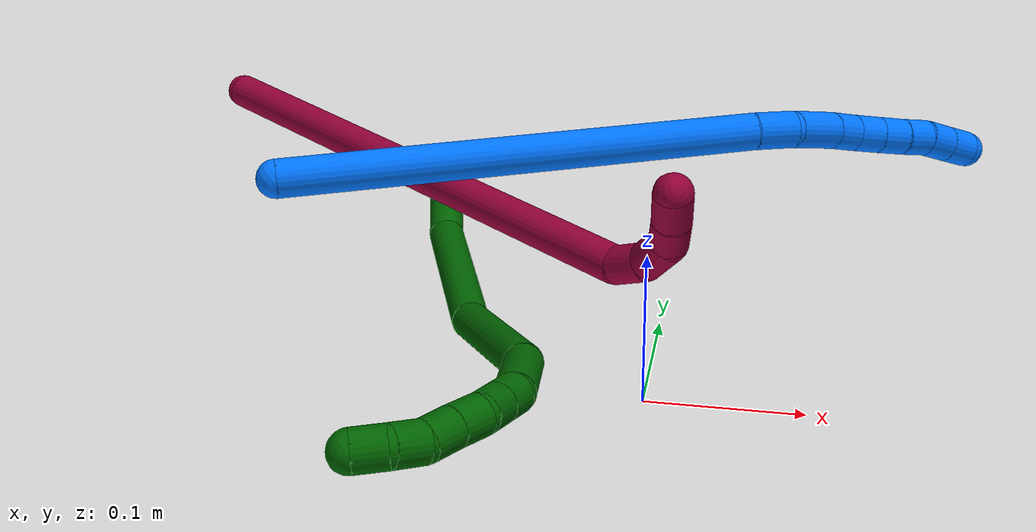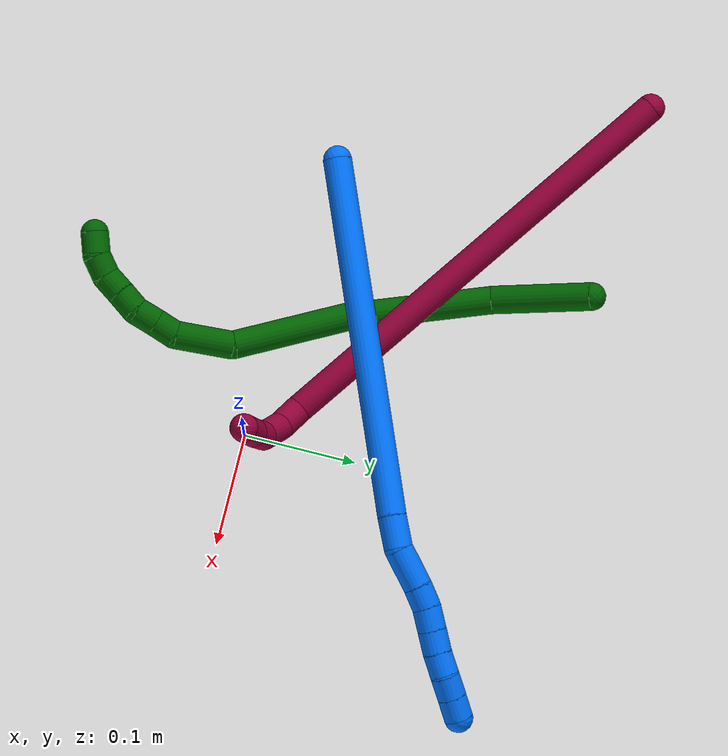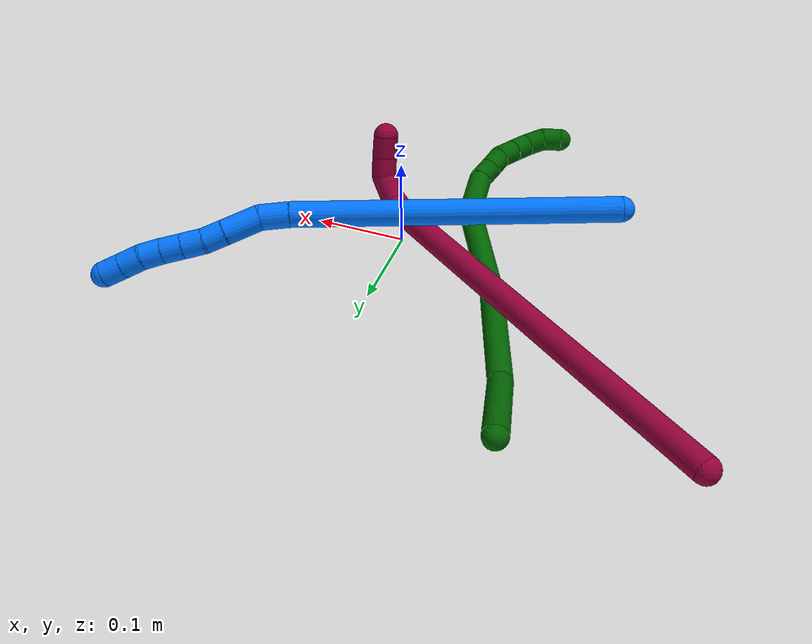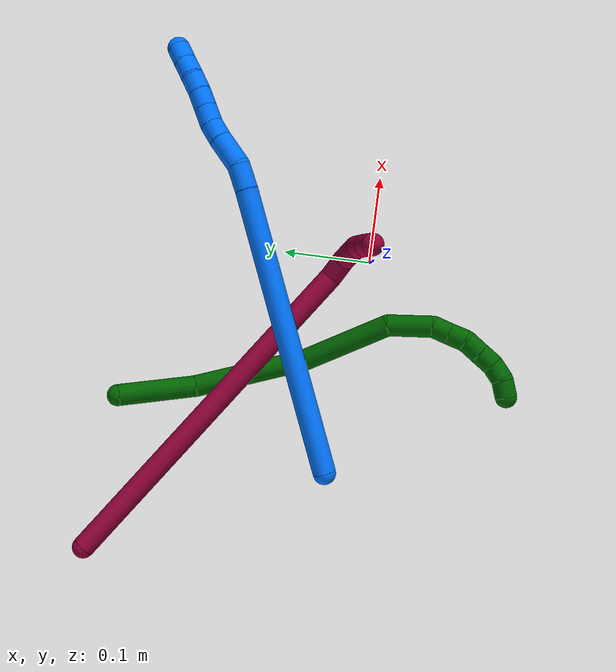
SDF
<sdf version="1.7">
 <world name="default">
  <model name="photoneo_s_sensor">
   <static>1</static>
   <pose>0 0 2 1.57079 1.57079 3.14159</pose>
   <link name="link">
    <inertial><mass>0.1</mass></inertial>
    <sensor name="sensor" type="depth">
     <update_rate>30</update_rate>
     <camera>
      <horizontal_fov>1.22</horizontal_fov>
      <image><width>1920</width><height>1200</height><format>B8G8R8</format></image>
      <clip><near>0.1</near><far>4</far></clip>
      <depth_camera><output>points</output></depth_camera>
     </camera>
     <plugin name="camera_plugin" filename="libgazebo_ros_depth_camera.so">
      <baseline>0.2</baseline>
      <alwaysOn>1</alwaysOn>
      <updateRate>0.0</updateRate>
      <cameraName>camera_ir</cameraName>
      <imageTopicName>/camera/color/image_raw</imageTopicName>
      <cameraInfoTopicName>/camera/color/camera_info</cameraInfoTopicName>
      <depthImageTopicName>/camera/depth/image_raw</depthImageTopicName>
      <depthImageCameraInfoTopicName>/camera/depth/camera_info</depthImageCameraInfoTopicName>
      <pointCloudTopicName>/camera/depth/points</pointCloudTopicName>
      <frameName>fr_optical</frameName>
      <pointCloudCutoff>0.1</pointCloudCutoff>
      <pointCloudCutoffMax>2.0</pointCloudCutoffMax>
      <distortionK1>0</distortionK1>
      <distortionK2>0</distortionK2>
      <distortionK3>0</distortionK3>
      <distortionT1>0</distortionT1>
      <distortionT2>0</distortionT2>
      <CxPrime>0</CxPrime>
      <Cx>0</Cx>
      <Cy>0</Cy>
      <focalLength>0</focalLength>
      <hackBaseline>0</hackBaseline>
     </plugin>
    </sensor>
   </link>
  </model>
  <model name="bin">
   <static>1</static>
   <link name="bottom">
    <collision name="collision-bottom">
     <pose>0 0 -0.01 0 -0 0</pose>
     <geometry><box><size>0.8 0.6 0.02</size></box></geometry>
     <surface>
      <friction><ode><mu>100</mu><mu2>100</mu2></ode></friction>
      <contact><collide_bitmask>65535</collide_bitmask></contact>
     </surface>
    </collision>
   </link>
   <link name="west_wall">
    <collision name="collision-west_wall">
     <pose>-0.41 0 0.1 0 -0 0</pose>
     <geometry><box><size>0.02 0.6 0.2</size></box></geometry>
     <surface>
      <friction><ode><mu>100</mu><mu2>100</mu2></ode></friction>
      <contact><collide_bitmask>65535</collide_bitmask></contact>
     </surface>
    </collision>
   </link>
   <link name="east_wall">
    <collision name="collision-east_wall">
     <pose>0.41 0 0.1 0 -0 0</pose>
     <geometry><box><size>0.02 0.6 0.2</size></box></geometry>
     <surface>
      <friction><ode><mu>100</mu><mu2>100</mu2></ode></friction>
      <contact><collide_bitmask>65535</collide_bitmask></contact>
     </surface>
    </collision>
   </link>
   <link name="south_wall">
    <collision name="collision-south_wall">
     <pose>0 -0.31 0.1 0 -0 0</pose>
     <geometry><box><size>0.8 0.02 0.2</size></box></geometry>
     <surface>
      <friction><ode><mu>100</mu><mu2>100</mu2></ode></friction>
      <contact><collide_bitmask>65535</collide_bitmask></contact>
     </surface>
    </collision>
   </link>
   <link name="north_wall">
    <collision name="collision-north_wall">
     <pose>0 0.31 0.1 0 -0 0</pose>
     <geometry><box><size>0.8 0.02 0.2</size></box></geometry>
     <surface>
      <friction><ode><mu>100</mu><mu2>100</mu2></ode></friction>
      <contact><collide_bitmask>65535</collide_bitmask></contact>
     </surface>
    </collision>
   </link>
  </model>
  <model name="6">
   <static>0</static>
   <link name="6">
    <collision name="collision-cylinder-e_1_1_4">
     <pose>0.002507 -0.037342 0.025676 0.968458 0.055254 0.029069</pose>
     <geometry><cylinder><radius>0.0125</radius><length>0.090774</length></cylinder></geometry>
     <surface>
      <friction><ode><mu>1.16</mu><mu2>1.16</mu2><slip1>0</slip1><slip2>0</slip2></ode></friction>
      <contact><ode><kp>1e+06</kp><kd>1</kd><max_vel>0</max_vel><min_depth>0.001</min_depth></ode></contact>
     </surface>
    </collision>
    <visual name="visual-cylinder-e_1_1_4">
     <pose>0.002507 -0.037342 0.025676 0.968458 0.055254 0.029069</pose>
     <geometry><cylinder><radius>0.0125</radius><length>0.090774</length></cylinder></geometry>
     <material><ambient>0 0.392157 0.003922 1</ambient></material>
    </visual>
    <collision name="collision-cylinder-e_2_4_5">
     <pose>0.026877 -0.122411 0.089234 0.899874 0.344505 0.16766</pose>
     <geometry><cylinder><radius>0.0125</radius><length>0.129476</length></cylinder></geometry>
     <surface>
      <friction><ode><mu>1.16</mu><mu2>1.16</mu2><slip1>0</slip1><slip2>0</slip2></ode></friction>
      <contact><ode><kp>1e+06</kp><kd>1</kd><max_vel>0</max_vel><min_depth>0.001</min_depth></ode></contact>
     </surface>
    </collision>
    <visual name="visual-cylinder-e_2_4_5">
     <pose>0.026877 -0.122411 0.089234 0.899874 0.344505 0.16766</pose>
     <geometry><cylinder><radius>0.0125</radius><length>0.129476</length></cylinder></geometry>
     <material><ambient>0 0.392157 0.003922 1</ambient></material>
    </visual>
    <collision name="collision-cylinder-e_3_5_6">
     <pose>0.081384 -0.202708 0.154956 0.863569 0.651043 0.308582</pose>
     <geometry><cylinder><radius>0.0125</radius><length>0.107729</length></cylinder></geometry>
     <surface>
      <friction><ode><mu>1.16</mu><mu2>1.16</mu2><slip1>0</slip1><slip2>0</slip2></ode></friction>
      <contact><ode><kp>1e+06</kp><kd>1</kd><max_vel>0</max_vel><min_depth>0.001</min_depth></ode></contact>
     </surface>
    </collision>
    <visual name="visual-cylinder-e_3_5_6">
     <pose>0.081384 -0.202708 0.154956 0.863569 0.651043 0.308582</pose>
     <geometry><cylinder><radius>0.0125</radius><length>0.107729</length></cylinder></geometry>
     <material><ambient>0 0.392157 0.003922 1</ambient></material>
    </visual>
    <collision name="collision-cylinder-e_4_6_7">
     <pose>0.122631 -0.247744 0.203933 0.532815 0.337252 0.09285</pose>
     <geometry><cylinder><radius>0.0125</radius><length>0.052008</length></cylinder></geometry>
     <surface>
      <friction><ode><mu>1.16</mu><mu2>1.16</mu2><slip1>0</slip1><slip2>0</slip2></ode></friction>
      <contact><ode><kp>1e+06</kp><kd>1</kd><max_vel>0</max_vel><min_depth>0.001</min_depth></ode></contact>
     </surface>
    </collision>
    <visual name="visual-cylinder-e_4_6_7">
     <pose>0.122631 -0.247744 0.203933 0.532815 0.337252 0.09285</pose>
     <geometry><cylinder><radius>0.0125</radius><length>0.052008</length></cylinder></geometry>
     <material><ambient>0 0.392157 0.003922 1</ambient></material>
    </visual>
    <collision name="collision-cylinder-e_5_7_8">
     <pose>0.131755 -0.262684 0.234748 0.250455 0.051938 0.00654</pose>
     <geometry><cylinder><radius>0.0125</radius><length>0.020006</length></cylinder></geometry>
     <surface>
      <friction><ode><mu>1.16</mu><mu2>1.16</mu2><slip1>0</slip1><slip2>0</slip2></ode></friction>
      <contact><ode><kp>1e+06</kp><kd>1</kd><max_vel>0</max_vel><min_depth>0.001</min_depth></ode></contact>
     </surface>
    </collision>
    <visual name="visual-cylinder-e_5_7_8">
     <pose>0.131755 -0.262684 0.234748 0.250455 0.051938 0.00654</pose>
     <geometry><cylinder><radius>0.0125</radius><length>0.020006</length></cylinder></geometry>
     <material><ambient>0 0.392157 0.003922 1</ambient></material>
    </visual>
    <collision name="collision-cylinder-e_6_8_9">
     <pose>0.133231 -0.267672 0.254058 0.255066 0.095794 0.012293</pose>
     <geometry><cylinder><radius>0.0125</radius><length>0.020002</length></cylinder></geometry>
     <surface>
      <friction><ode><mu>1.16</mu><mu2>1.16</mu2><slip1>0</slip1><slip2>0</slip2></ode></friction>
      <contact><ode><kp>1e+06</kp><kd>1</kd><max_vel>0</max_vel><min_depth>0.001</min_depth></ode></contact>
     </surface>
    </collision>
    <visual name="visual-cylinder-e_6_8_9">
     <pose>0.133231 -0.267672 0.254058 0.255066 0.095794 0.012293</pose>
     <geometry><cylinder><radius>0.0125</radius><length>0.020002</length></cylinder></geometry>
     <material><ambient>0 0.392157 0.003922 1</ambient></material>
    </visual>
    <collision name="collision-cylinder-e_7_9_10">
     <pose>0.131643 -0.271261 0.273305 0.111602 -0.257179 -0.014445</pose>
     <geometry><cylinder><radius>0.0125</radius><length>0.020005</length></cylinder></geometry>
     <surface>
      <friction><ode><mu>1.16</mu><mu2>1.16</mu2><slip1>0</slip1><slip2>0</slip2></ode></friction>
      <contact><ode><kp>1e+06</kp><kd>1</kd><max_vel>0</max_vel><min_depth>0.001</min_depth></ode></contact>
     </surface>
    </collision>
    <visual name="visual-cylinder-e_7_9_10">
     <pose>0.131643 -0.271261 0.273305 0.111602 -0.257179 -0.014445</pose>
     <geometry><cylinder><radius>0.0125</radius><length>0.020005</length></cylinder></geometry>
     <material><ambient>0 0.392157 0.003922 1</ambient></material>
    </visual>
    <collision name="collision-cylinder-e_8_10_11">
     <pose>0.126445 -0.273771 0.292453 0.149115 -0.268665 -0.020189</pose>
     <geometry><cylinder><radius>0.0125</radius><length>0.02</length></cylinder></geometry>
     <surface>
      <friction><ode><mu>1.16</mu><mu2>1.16</mu2><slip1>0</slip1><slip2>0</slip2></ode></friction>
      <contact><ode><kp>1e+06</kp><kd>1</kd><max_vel>0</max_vel><min_depth>0.001</min_depth></ode></contact>
     </surface>
    </collision>
    <visual name="visual-cylinder-e_8_10_11">
     <pose>0.126445 -0.273771 0.292453 0.149115 -0.268665 -0.020189</pose>
     <geometry><cylinder><radius>0.0125</radius><length>0.02</length></cylinder></geometry>
     <material><ambient>0 0.392157 0.003922 1</ambient></material>
    </visual>
    <collision name="collision-cylinder-e_9_11_12">
     <pose>0.120635 -0.273453 0.311314 -0.185494 -0.320976 0.030112</pose>
     <geometry><cylinder><radius>0.0125</radius><length>0.02</length></cylinder></geometry>
     <surface>
      <friction><ode><mu>1.16</mu><mu2>1.16</mu2><slip1>0</slip1><slip2>0</slip2></ode></friction>
      <contact><ode><kp>1e+06</kp><kd>1</kd><max_vel>0</max_vel><min_depth>0.001</min_depth></ode></contact>
     </surface>
    </collision>
    <visual name="visual-cylinder-e_9_11_12">
     <pose>0.120635 -0.273453 0.311314 -0.185494 -0.320976 0.030112</pose>
     <geometry><cylinder><radius>0.0125</radius><length>0.02</length></cylinder></geometry>
     <material><ambient>0 0.392157 0.003922 1</ambient></material>
    </visual>
    <collision name="collision-cylinder-e_10_12_2">
     <pose>0.111303 -0.268555 0.327848 -0.411747 -0.66577 0.144158</pose>
     <geometry><cylinder><radius>0.0125</radius><length>0.02</length></cylinder></geometry>
     <surface>
      <friction><ode><mu>1.16</mu><mu2>1.16</mu2><slip1>0</slip1><slip2>0</slip2></ode></friction>
      <contact><ode><kp>1e+06</kp><kd>1</kd><max_vel>0</max_vel><min_depth>0.001</min_depth></ode></contact>
     </surface>
    </collision>
    <visual name="visual-cylinder-e_10_12_2">
     <pose>0.111303 -0.268555 0.327848 -0.411747 -0.66577 0.144158</pose>
     <geometry><cylinder><radius>0.0125</radius><length>0.02</length></cylinder></geometry>
     <material><ambient>0 0.392157 0.003922 1</ambient></material>
    </visual>
    <collision name="collision-sphere-2">
     <pose>0.105127 -0.265408 0.335055 0 -0 0</pose>
     <geometry><sphere><radius>0.0125</radius></sphere></geometry>
     <surface>
      <friction><ode><mu>1.16</mu><mu2>1.16</mu2><slip1>0</slip1><slip2>0</slip2></ode></friction>
      <contact><ode><kp>1e+06</kp><kd>1</kd><max_vel>0</max_vel><min_depth>0.001</min_depth></ode></contact>
     </surface>
    </collision>
    <visual name="visual-sphere-2">
     <pose>0.105127 -0.265408 0.335055 0 -0 0</pose>
     <geometry><sphere><radius>0.0125</radius></sphere></geometry>
     <material><ambient>0 0.392157 0.003922 1</ambient></material>
    </visual>
    <collision name="collision-sphere-12">
     <pose>0.11748 -0.271703 0.32064 0 -0 0</pose>
     <geometry><sphere><radius>0.0125</radius></sphere></geometry>
     <surface>
      <friction><ode><mu>1.16</mu><mu2>1.16</mu2><slip1>0</slip1><slip2>0</slip2></ode></friction>
      <contact><ode><kp>1e+06</kp><kd>1</kd><max_vel>0</max_vel><min_depth>0.001</min_depth></ode></contact>
     </surface>
    </collision>
    <visual name="visual-sphere-12">
     <pose>0.11748 -0.271703 0.32064 0 -0 0</pose>
     <geometry><sphere><radius>0.0125</radius></sphere></geometry>
     <material><ambient>0 0.392157 0.003922 1</ambient></material>
    </visual>
    <collision name="collision-sphere-11">
     <pose>0.12379 -0.275203 0.301987 0 -0 0</pose>
     <geometry><sphere><radius>0.0125</radius></sphere></geometry>
     <surface>
      <friction><ode><mu>1.16</mu><mu2>1.16</mu2><slip1>0</slip1><slip2>0</slip2></ode></friction>
      <contact><ode><kp>1e+06</kp><kd>1</kd><max_vel>0</max_vel><min_depth>0.001</min_depth></ode></contact>
     </surface>
    </collision>
    <visual name="visual-sphere-11">
     <pose>0.12379 -0.275203 0.301987 0 -0 0</pose>
     <geometry><sphere><radius>0.0125</radius></sphere></geometry>
     <material><ambient>0 0.392157 0.003922 1</ambient></material>
    </visual>
    <collision name="collision-sphere-10">
     <pose>0.129099 -0.272338 0.282918 0 -0 0</pose>
     <geometry><sphere><radius>0.0125</radius></sphere></geometry>
     <surface>
      <friction><ode><mu>1.16</mu><mu2>1.16</mu2><slip1>0</slip1><slip2>0</slip2></ode></friction>
      <contact><ode><kp>1e+06</kp><kd>1</kd><max_vel>0</max_vel><min_depth>0.001</min_depth></ode></contact>
     </surface>
    </collision>
    <visual name="visual-sphere-10">
     <pose>0.129099 -0.272338 0.282918 0 -0 0</pose>
     <geometry><sphere><radius>0.0125</radius></sphere></geometry>
     <material><ambient>0 0.392157 0.003922 1</ambient></material>
    </visual>
    <collision name="collision-sphere-9">
     <pose>0.134187 -0.270183 0.263691 0 -0 0</pose>
     <geometry><sphere><radius>0.0125</radius></sphere></geometry>
     <surface>
      <friction><ode><mu>1.16</mu><mu2>1.16</mu2><slip1>0</slip1><slip2>0</slip2></ode></friction>
      <contact><ode><kp>1e+06</kp><kd>1</kd><max_vel>0</max_vel><min_depth>0.001</min_depth></ode></contact>
     </surface>
    </collision>
    <visual name="visual-sphere-9">
     <pose>0.134187 -0.270183 0.263691 0 -0 0</pose>
     <geometry><sphere><radius>0.0125</radius></sphere></geometry>
     <material><ambient>0 0.392157 0.003922 1</ambient></material>
    </visual>
    <collision name="collision-sphere-4">
     <pose>0.005013 -0.074684 0.051351 0 -0 0</pose>
     <geometry><sphere><radius>0.0125</radius></sphere></geometry>
     <surface>
      <friction><ode><mu>1.16</mu><mu2>1.16</mu2><slip1>0</slip1><slip2>0</slip2></ode></friction>
      <contact><ode><kp>1e+06</kp><kd>1</kd><max_vel>0</max_vel><min_depth>0.001</min_depth></ode></contact>
     </surface>
    </collision>
    <visual name="visual-sphere-4">
     <pose>0.005013 -0.074684 0.051351 0 -0 0</pose>
     <geometry><sphere><radius>0.0125</radius></sphere></geometry>
     <material><ambient>0 0.392157 0.003922 1</ambient></material>
    </visual>
    <collision name="collision-sphere-1">
     <geometry><sphere><radius>0.0125</radius></sphere></geometry>
     <surface>
      <friction><ode><mu>1.16</mu><mu2>1.16</mu2><slip1>0</slip1><slip2>0</slip2></ode></friction>
      <contact><ode><kp>1e+06</kp><kd>1</kd><max_vel>0</max_vel><min_depth>0.001</min_depth></ode></contact>
     </surface>
    </collision>
    <visual name="visual-sphere-1">
     <geometry><sphere><radius>0.0125</radius></sphere></geometry>
     <material><ambient>0 0.392157 0.003922 1</ambient></material>
    </visual>
    <collision name="collision-sphere-8">
     <pose>0.132274 -0.26516 0.244425 0 -0 0</pose>
     <geometry><sphere><radius>0.0125</radius></sphere></geometry>
     <surface>
      <friction><ode><mu>1.16</mu><mu2>1.16</mu2><slip1>0</slip1><slip2>0</slip2></ode></friction>
      <contact><ode><kp>1e+06</kp><kd>1</kd><max_vel>0</max_vel><min_depth>0.001</min_depth></ode></contact>
     </surface>
    </collision>
    <visual name="visual-sphere-8">
     <pose>0.132274 -0.26516 0.244425 0 -0 0</pose>
     <geometry><sphere><radius>0.0125</radius></sphere></geometry>
     <material><ambient>0 0.392157 0.003922 1</ambient></material>
    </visual>
    <collision name="collision-sphere-5">
     <pose>0.048741 -0.170138 0.127118 0 -0 0</pose>
     <geometry><sphere><radius>0.0125</radius></sphere></geometry>
     <surface>
      <friction><ode><mu>1.16</mu><mu2>1.16</mu2><slip1>0</slip1><slip2>0</slip2></ode></friction>
      <contact><ode><kp>1e+06</kp><kd>1</kd><max_vel>0</max_vel><min_depth>0.001</min_depth></ode></contact>
     </surface>
    </collision>
    <visual name="visual-sphere-5">
     <pose>0.048741 -0.170138 0.127118 0 -0 0</pose>
     <geometry><sphere><radius>0.0125</radius></sphere></geometry>
     <material><ambient>0 0.392157 0.003922 1</ambient></material>
    </visual>
    <collision name="collision-sphere-6">
     <pose>0.114027 -0.235279 0.182795 0 -0 0</pose>
     <geometry><sphere><radius>0.0125</radius></sphere></geometry>
     <surface>
      <friction><ode><mu>1.16</mu><mu2>1.16</mu2><slip1>0</slip1><slip2>0</slip2></ode></friction>
      <contact><ode><kp>1e+06</kp><kd>1</kd><max_vel>0</max_vel><min_depth>0.001</min_depth></ode></contact>
     </surface>
    </collision>
    <visual name="visual-sphere-6">
     <pose>0.114027 -0.235279 0.182795 0 -0 0</pose>
     <geometry><sphere><radius>0.0125</radius></sphere></geometry>
     <material><ambient>0 0.392157 0.003922 1</ambient></material>
    </visual>
    <collision name="collision-sphere-7">
     <pose>0.131236 -0.260208 0.22507 0 -0 0</pose>
     <geometry><sphere><radius>0.0125</radius></sphere></geometry>
     <surface>
      <friction><ode><mu>1.16</mu><mu2>1.16</mu2><slip1>0</slip1><slip2>0</slip2></ode></friction>
      <contact><ode><kp>1e+06</kp><kd>1</kd><max_vel>0</max_vel><min_depth>0.001</min_depth></ode></contact>
     </surface>
    </collision>
    <visual name="visual-sphere-7">
     <pose>0.131236 -0.260208 0.22507 0 -0 0</pose>
     <geometry><sphere><radius>0.0125</radius></sphere></geometry>
     <material><ambient>0 0.392157 0.003922 1</ambient></material>
    </visual>
    <inertial>
     <pose>0.067909 -0.172625 0.150124 0 -0 0</pose>
     <mass>0.5</mass>
     <inertia><ixx>0.000408</ixx><ixy>0</ixy><ixz>0</ixz><iyy>0.0003</iyy><iyz>0</iyz><izz>0.000155</izz></inertia>
    </inertial>
   </link>
   <pose>-0.188579 0.267674 0.041274 1.09294 -0.806228 -0.176507</pose>
  </model>
  <model name="8">
   <static>0</static>
   <link name="8">
    <collision name="collision-cylinder-e_1_1_4">
     <pose>0.155625 -0.005562 -0.130333 3.09894 0.873167 3.05024</pose>
     <geometry><cylinder><radius>0.0125</radius><length>0.406137</length></cylinder></geometry>
     <surface>
      <friction><ode><mu>1.16</mu><mu2>1.16</mu2><slip1>0</slip1><slip2>0</slip2></ode></friction>
      <contact><ode><kp>1e+06</kp><kd>1</kd><max_vel>0</max_vel><min_depth>0.001</min_depth></ode></contact>
     </surface>
    </collision>
    <visual name="visual-cylinder-e_1_1_4">
     <pose>0.155625 -0.005562 -0.130333 3.09894 0.873167 3.05024</pose>
     <geometry><cylinder><radius>0.0125</radius><length>0.406137</length></cylinder></geometry>
     <material><ambient>0.584314 0 0.227451 1</ambient></material>
    </visual>
    <collision name="collision-cylinder-e_2_4_5">
     <pose>0.31755 -0.015414 -0.270223 2.71966 0.541394 1.82711</pose>
     <geometry><cylinder><radius>0.0125</radius><length>0.024446</length></cylinder></geometry>
     <surface>
      <friction><ode><mu>1.16</mu><mu2>1.16</mu2><slip1>0</slip1><slip2>0</slip2></ode></friction>
      <contact><ode><kp>1e+06</kp><kd>1</kd><max_vel>0</max_vel><min_depth>0.001</min_depth></ode></contact>
     </surface>
    </collision>
    <visual name="visual-cylinder-e_2_4_5">
     <pose>0.31755 -0.015414 -0.270223 2.71966 0.541394 1.82711</pose>
     <geometry><cylinder><radius>0.0125</radius><length>0.024446</length></cylinder></geometry>
     <material><ambient>0.584314 0 0.227451 1</ambient></material>
    </visual>
    <collision name="collision-cylinder-e_3_5_6">
     <pose>0.325436 -0.025971 -0.291566 2.65289 0.118373 0.466656</pose>
     <geometry><cylinder><radius>0.0125</radius><length>0.026888</length></cylinder></geometry>
     <surface>
      <friction><ode><mu>1.16</mu><mu2>1.16</mu2><slip1>0</slip1><slip2>0</slip2></ode></friction>
      <contact><ode><kp>1e+06</kp><kd>1</kd><max_vel>0</max_vel><min_depth>0.001</min_depth></ode></contact>
     </surface>
    </collision>
    <visual name="visual-cylinder-e_3_5_6">
     <pose>0.325436 -0.025971 -0.291566 2.65289 0.118373 0.466656</pose>
     <geometry><cylinder><radius>0.0125</radius><length>0.026888</length></cylinder></geometry>
     <material><ambient>0.584314 0 0.227451 1</ambient></material>
    </visual>
    <collision name="collision-cylinder-e_4_6_7">
     <pose>0.323397 -0.035863 -0.311953 2.74272 -0.370692 -1.49577</pose>
     <geometry><cylinder><radius>0.0125</radius><length>0.020023</length></cylinder></geometry>
     <surface>
      <friction><ode><mu>1.16</mu><mu2>1.16</mu2><slip1>0</slip1><slip2>0</slip2></ode></friction>
      <contact><ode><kp>1e+06</kp><kd>1</kd><max_vel>0</max_vel><min_depth>0.001</min_depth></ode></contact>
     </surface>
    </collision>
    <visual name="visual-cylinder-e_4_6_7">
     <pose>0.323397 -0.035863 -0.311953 2.74272 -0.370692 -1.49577</pose>
     <geometry><cylinder><radius>0.0125</radius><length>0.020023</length></cylinder></geometry>
     <material><ambient>0.584314 0 0.227451 1</ambient></material>
    </visual>
    <collision name="collision-cylinder-e_5_7_2">
     <pose>0.314843 -0.043932 -0.329639 2.68668 -0.453224 -1.56695</pose>
     <geometry><cylinder><radius>0.0125</radius><length>0.022505</length></cylinder></geometry>
     <surface>
      <friction><ode><mu>1.16</mu><mu2>1.16</mu2><slip1>0</slip1><slip2>0</slip2></ode></friction>
      <contact><ode><kp>1e+06</kp><kd>1</kd><max_vel>0</max_vel><min_depth>0.001</min_depth></ode></contact>
     </surface>
    </collision>
    <visual name="visual-cylinder-e_5_7_2">
     <pose>0.314843 -0.043932 -0.329639 2.68668 -0.453224 -1.56695</pose>
     <geometry><cylinder><radius>0.0125</radius><length>0.022505</length></cylinder></geometry>
     <material><ambient>0.584314 0 0.227451 1</ambient></material>
    </visual>
    <collision name="collision-sphere-2">
     <pose>0.309916 -0.048377 -0.338727 0 -0 0</pose>
     <geometry><sphere><radius>0.0125</radius></sphere></geometry>
     <surface>
      <friction><ode><mu>1.16</mu><mu2>1.16</mu2><slip1>0</slip1><slip2>0</slip2></ode></friction>
      <contact><ode><kp>1e+06</kp><kd>1</kd><max_vel>0</max_vel><min_depth>0.001</min_depth></ode></contact>
     </surface>
    </collision>
    <visual name="visual-sphere-2">
     <pose>0.309916 -0.048377 -0.338727 0 -0 0</pose>
     <geometry><sphere><radius>0.0125</radius></sphere></geometry>
     <material><ambient>0.584314 0 0.227451 1</ambient></material>
    </visual>
    <collision name="collision-sphere-7">
     <pose>0.31977 -0.039487 -0.320552 0 -0 0</pose>
     <geometry><sphere><radius>0.0125</radius></sphere></geometry>
     <surface>
      <friction><ode><mu>1.16</mu><mu2>1.16</mu2><slip1>0</slip1><slip2>0</slip2></ode></friction>
      <contact><ode><kp>1e+06</kp><kd>1</kd><max_vel>0</max_vel><min_depth>0.001</min_depth></ode></contact>
     </surface>
    </collision>
    <visual name="visual-sphere-7">
     <pose>0.31977 -0.039487 -0.320552 0 -0 0</pose>
     <geometry><sphere><radius>0.0125</radius></sphere></geometry>
     <material><ambient>0.584314 0 0.227451 1</ambient></material>
    </visual>
    <collision name="collision-sphere-6">
     <pose>0.327024 -0.032239 -0.303353 0 -0 0</pose>
     <geometry><sphere><radius>0.0125</radius></sphere></geometry>
     <surface>
      <friction><ode><mu>1.16</mu><mu2>1.16</mu2><slip1>0</slip1><slip2>0</slip2></ode></friction>
      <contact><ode><kp>1e+06</kp><kd>1</kd><max_vel>0</max_vel><min_depth>0.001</min_depth></ode></contact>
     </surface>
    </collision>
    <visual name="visual-sphere-6">
     <pose>0.327024 -0.032239 -0.303353 0 -0 0</pose>
     <geometry><sphere><radius>0.0125</radius></sphere></geometry>
     <material><ambient>0.584314 0 0.227451 1</ambient></material>
    </visual>
    <collision name="collision-sphere-5">
     <pose>0.323848 -0.019704 -0.279779 0 -0 0</pose>
     <geometry><sphere><radius>0.0125</radius></sphere></geometry>
     <surface>
      <friction><ode><mu>1.16</mu><mu2>1.16</mu2><slip1>0</slip1><slip2>0</slip2></ode></friction>
      <contact><ode><kp>1e+06</kp><kd>1</kd><max_vel>0</max_vel><min_depth>0.001</min_depth></ode></contact>
     </surface>
    </collision>
    <visual name="visual-sphere-5">
     <pose>0.323848 -0.019704 -0.279779 0 -0 0</pose>
     <geometry><sphere><radius>0.0125</radius></sphere></geometry>
     <material><ambient>0.584314 0 0.227451 1</ambient></material>
    </visual>
    <collision name="collision-sphere-1">
     <geometry><sphere><radius>0.0125</radius></sphere></geometry>
     <surface>
      <friction><ode><mu>1.16</mu><mu2>1.16</mu2><slip1>0</slip1><slip2>0</slip2></ode></friction>
      <contact><ode><kp>1e+06</kp><kd>1</kd><max_vel>0</max_vel><min_depth>0.001</min_depth></ode></contact>
     </surface>
    </collision>
    <visual name="visual-sphere-1">
     <geometry><sphere><radius>0.0125</radius></sphere></geometry>
     <material><ambient>0.584314 0 0.227451 1</ambient></material>
    </visual>
    <collision name="collision-sphere-4">
     <pose>0.311251 -0.011124 -0.260666 0 -0 0</pose>
     <geometry><sphere><radius>0.0125</radius></sphere></geometry>
     <surface>
      <friction><ode><mu>1.16</mu><mu2>1.16</mu2><slip1>0</slip1><slip2>0</slip2></ode></friction>
      <contact><ode><kp>1e+06</kp><kd>1</kd><max_vel>0</max_vel><min_depth>0.001</min_depth></ode></contact>
     </surface>
    </collision>
    <visual name="visual-sphere-4">
     <pose>0.311251 -0.011124 -0.260666 0 -0 0</pose>
     <geometry><sphere><radius>0.0125</radius></sphere></geometry>
     <material><ambient>0.584314 0 0.227451 1</ambient></material>
    </visual>
    <inertial>
     <pose>0.186559 -0.010082 -0.162087 0 -0 0</pose>
     <mass>0.5</mass>
     <inertia>
      <ixx>-0.003227</ixx>
      <ixy>0</ixy>
      <ixz>0</ixz>
      <iyy>0.00591</iyy>
      <iyz>0</iyz>
      <izz>-0.00416</izz>
     </inertia>
    </inertial>
   </link>
   <pose>-0.356158 0.277674 0.083976 -2.32019 0.576262 -0.144141</pose>
  </model>
  <model name="14">
   <static>0</static>
   <link name="14">
    <collision name="collision-cylinder-e_1_1_4">
     <pose>0.034443 0.13337 -0.076656 -2.09245 0.220268 -0.377654</pose>
     <geometry><cylinder><radius>0.0125</radius><length>0.315277</length></cylinder></geometry>
     <surface>
      <friction><ode><mu>1.16</mu><mu2>1.16</mu2><slip1>0</slip1><slip2>0</slip2></ode></friction>
      <contact><ode><kp>1e+06</kp><kd>1</kd><max_vel>0</max_vel><min_depth>0.001</min_depth></ode></contact>
     </surface>
    </collision>
    <visual name="visual-cylinder-e_1_1_4">
     <pose>0.034443 0.13337 -0.076656 -2.09245 0.220268 -0.377654</pose>
     <geometry><cylinder><radius>0.0125</radius><length>0.315277</length></cylinder></geometry>
     <material><ambient>0 0.462745 1 1</ambient></material>
    </visual>
    <collision name="collision-cylinder-e_2_4_5">
     <pose>0.07084 0.278831 -0.160408 -2.10154 0.138568 -0.241211</pose>
     <geometry><cylinder><radius>0.0125</radius><length>0.028311</length></cylinder></geometry>
     <surface>
      <friction><ode><mu>1.16</mu><mu2>1.16</mu2><slip1>0</slip1><slip2>0</slip2></ode></friction>
      <contact><ode><kp>1e+06</kp><kd>1</kd><max_vel>0</max_vel><min_depth>0.001</min_depth></ode></contact>
     </surface>
    </collision>
    <visual name="visual-cylinder-e_2_4_5">
     <pose>0.07084 0.278831 -0.160408 -2.10154 0.138568 -0.241211</pose>
     <geometry><cylinder><radius>0.0125</radius><length>0.028311</length></cylinder></geometry>
     <material><ambient>0 0.462745 1 1</ambient></material>
    </visual>
    <collision name="collision-cylinder-e_3_5_6">
     <pose>0.069632 0.306831 -0.174985 -2.01033 -0.17807 0.279414</pose>
     <geometry><cylinder><radius>0.0125</radius><length>0.035725</length></cylinder></geometry>
     <surface>
      <friction><ode><mu>1.16</mu><mu2>1.16</mu2><slip1>0</slip1><slip2>0</slip2></ode></friction>
      <contact><ode><kp>1e+06</kp><kd>1</kd><max_vel>0</max_vel><min_depth>0.001</min_depth></ode></contact>
     </surface>
    </collision>
    <visual name="visual-cylinder-e_3_5_6">
     <pose>0.069632 0.306831 -0.174985 -2.01033 -0.17807 0.279414</pose>
     <geometry><cylinder><radius>0.0125</radius><length>0.035725</length></cylinder></geometry>
     <material><ambient>0 0.462745 1 1</ambient></material>
    </visual>
    <collision name="collision-cylinder-e_4_6_7">
     <pose>0.064843 0.331322 -0.187357 -2.08884 -0.16302 0.279348</pose>
     <geometry><cylinder><radius>0.0125</radius><length>0.020023</length></cylinder></geometry>
     <surface>
      <friction><ode><mu>1.16</mu><mu2>1.16</mu2><slip1>0</slip1><slip2>0</slip2></ode></friction>
      <contact><ode><kp>1e+06</kp><kd>1</kd><max_vel>0</max_vel><min_depth>0.001</min_depth></ode></contact>
     </surface>
    </collision>
    <visual name="visual-cylinder-e_4_6_7">
     <pose>0.064843 0.331322 -0.187357 -2.08884 -0.16302 0.279348</pose>
     <geometry><cylinder><radius>0.0125</radius><length>0.020023</length></cylinder></geometry>
     <material><ambient>0 0.462745 1 1</ambient></material>
    </visual>
    <collision name="collision-cylinder-e_5_7_8">
     <pose>0.063246 0.348357 -0.19801 -2.169 0.002743 -0.00519</pose>
     <geometry><cylinder><radius>0.0125</radius><length>0.020459</length></cylinder></geometry>
     <surface>
      <friction><ode><mu>1.16</mu><mu2>1.16</mu2><slip1>0</slip1><slip2>0</slip2></ode></friction>
      <contact><ode><kp>1e+06</kp><kd>1</kd><max_vel>0</max_vel><min_depth>0.001</min_depth></ode></contact>
     </surface>
    </collision>
    <visual name="visual-cylinder-e_5_7_8">
     <pose>0.063246 0.348357 -0.19801 -2.169 0.002743 -0.00519</pose>
     <geometry><cylinder><radius>0.0125</radius><length>0.020459</length></cylinder></geometry>
     <material><ambient>0 0.462745 1 1</ambient></material>
    </visual>
    <collision name="collision-cylinder-e_6_8_9">
     <pose>0.063383 0.365155 -0.209411 -2.16523 0.010798 -0.020333</pose>
     <geometry><cylinder><radius>0.0125</radius><length>0.020146</length></cylinder></geometry>
     <surface>
      <friction><ode><mu>1.16</mu><mu2>1.16</mu2><slip1>0</slip1><slip2>0</slip2></ode></friction>
      <contact><ode><kp>1e+06</kp><kd>1</kd><max_vel>0</max_vel><min_depth>0.001</min_depth></ode></contact>
     </surface>
    </collision>
    <visual name="visual-cylinder-e_6_8_9">
     <pose>0.063383 0.365155 -0.209411 -2.16523 0.010798 -0.020333</pose>
     <geometry><cylinder><radius>0.0125</radius><length>0.020146</length></cylinder></geometry>
     <material><ambient>0 0.462745 1 1</ambient></material>
    </visual>
    <collision name="collision-cylinder-e_7_9_10">
     <pose>0.063055 0.382138 -0.220095 -2.09918 -0.043613 0.075934</pose>
     <geometry><cylinder><radius>0.0125</radius><length>0.020024</length></cylinder></geometry>
     <surface>
      <friction><ode><mu>1.16</mu><mu2>1.16</mu2><slip1>0</slip1><slip2>0</slip2></ode></friction>
      <contact><ode><kp>1e+06</kp><kd>1</kd><max_vel>0</max_vel><min_depth>0.001</min_depth></ode></contact>
     </surface>
    </collision>
    <visual name="visual-cylinder-e_7_9_10">
     <pose>0.063055 0.382138 -0.220095 -2.09918 -0.043613 0.075934</pose>
     <geometry><cylinder><radius>0.0125</radius><length>0.020024</length></cylinder></geometry>
     <material><ambient>0 0.462745 1 1</ambient></material>
    </visual>
    <collision name="collision-cylinder-e_8_10_11">
     <pose>0.060776 0.398612 -0.2311 -2.22128 -0.185042 0.370124</pose>
     <geometry><cylinder><radius>0.0125</radius><length>0.020033</length></cylinder></geometry>
     <surface>
      <friction><ode><mu>1.16</mu><mu2>1.16</mu2><slip1>0</slip1><slip2>0</slip2></ode></friction>
      <contact><ode><kp>1e+06</kp><kd>1</kd><max_vel>0</max_vel><min_depth>0.001</min_depth></ode></contact>
     </surface>
    </collision>
    <visual name="visual-cylinder-e_8_10_11">
     <pose>0.060776 0.398612 -0.2311 -2.22128 -0.185042 0.370124</pose>
     <geometry><cylinder><radius>0.0125</radius><length>0.020033</length></cylinder></geometry>
     <material><ambient>0 0.462745 1 1</ambient></material>
    </visual>
    <collision name="collision-cylinder-e_9_11_2">
     <pose>0.057193 0.414267 -0.243049 -2.22418 -0.174807 0.351224</pose>
     <geometry><cylinder><radius>0.0125</radius><length>0.020003</length></cylinder></geometry>
     <surface>
      <friction><ode><mu>1.16</mu><mu2>1.16</mu2><slip1>0</slip1><slip2>0</slip2></ode></friction>
      <contact><ode><kp>1e+06</kp><kd>1</kd><max_vel>0</max_vel><min_depth>0.001</min_depth></ode></contact>
     </surface>
    </collision>
    <visual name="visual-cylinder-e_9_11_2">
     <pose>0.057193 0.414267 -0.243049 -2.22418 -0.174807 0.351224</pose>
     <geometry><cylinder><radius>0.0125</radius><length>0.020003</length></cylinder></geometry>
     <material><ambient>0 0.462745 1 1</ambient></material>
    </visual>
    <collision name="collision-sphere-2">
     <pose>0.055454 0.422087 -0.249036 0 -0 0</pose>
     <geometry><sphere><radius>0.0125</radius></sphere></geometry>
     <surface>
      <friction><ode><mu>1.16</mu><mu2>1.16</mu2><slip1>0</slip1><slip2>0</slip2></ode></friction>
      <contact><ode><kp>1e+06</kp><kd>1</kd><max_vel>0</max_vel><min_depth>0.001</min_depth></ode></contact>
     </surface>
    </collision>
    <visual name="visual-sphere-2">
     <pose>0.055454 0.422087 -0.249036 0 -0 0</pose>
     <geometry><sphere><radius>0.0125</radius></sphere></geometry>
     <material><ambient>0 0.462745 1 1</ambient></material>
    </visual>
    <collision name="collision-sphere-11">
     <pose>0.058933 0.406447 -0.237062 0 -0 0</pose>
     <geometry><sphere><radius>0.0125</radius></sphere></geometry>
     <surface>
      <friction><ode><mu>1.16</mu><mu2>1.16</mu2><slip1>0</slip1><slip2>0</slip2></ode></friction>
      <contact><ode><kp>1e+06</kp><kd>1</kd><max_vel>0</max_vel><min_depth>0.001</min_depth></ode></contact>
     </surface>
    </collision>
    <visual name="visual-sphere-11">
     <pose>0.058933 0.406447 -0.237062 0 -0 0</pose>
     <geometry><sphere><radius>0.0125</radius></sphere></geometry>
     <material><ambient>0 0.462745 1 1</ambient></material>
    </visual>
    <collision name="collision-sphere-10">
     <pose>0.062619 0.390777 -0.225138 0 -0 0</pose>
     <geometry><sphere><radius>0.0125</radius></sphere></geometry>
     <surface>
      <friction><ode><mu>1.16</mu><mu2>1.16</mu2><slip1>0</slip1><slip2>0</slip2></ode></friction>
      <contact><ode><kp>1e+06</kp><kd>1</kd><max_vel>0</max_vel><min_depth>0.001</min_depth></ode></contact>
     </surface>
    </collision>
    <visual name="visual-sphere-10">
     <pose>0.062619 0.390777 -0.225138 0 -0 0</pose>
     <geometry><sphere><radius>0.0125</radius></sphere></geometry>
     <material><ambient>0 0.462745 1 1</ambient></material>
    </visual>
    <collision name="collision-sphere-9">
     <pose>0.063492 0.373499 -0.215052 0 -0 0</pose>
     <geometry><sphere><radius>0.0125</radius></sphere></geometry>
     <surface>
      <friction><ode><mu>1.16</mu><mu2>1.16</mu2><slip1>0</slip1><slip2>0</slip2></ode></friction>
      <contact><ode><kp>1e+06</kp><kd>1</kd><max_vel>0</max_vel><min_depth>0.001</min_depth></ode></contact>
     </surface>
    </collision>
    <visual name="visual-sphere-9">
     <pose>0.063492 0.373499 -0.215052 0 -0 0</pose>
     <geometry><sphere><radius>0.0125</radius></sphere></geometry>
     <material><ambient>0 0.462745 1 1</ambient></material>
    </visual>
    <collision name="collision-sphere-4">
     <pose>0.068885 0.26674 -0.153312 0 -0 0</pose>
     <geometry><sphere><radius>0.0125</radius></sphere></geometry>
     <surface>
      <friction><ode><mu>1.16</mu><mu2>1.16</mu2><slip1>0</slip1><slip2>0</slip2></ode></friction>
      <contact><ode><kp>1e+06</kp><kd>1</kd><max_vel>0</max_vel><min_depth>0.001</min_depth></ode></contact>
     </surface>
    </collision>
    <visual name="visual-sphere-4">
     <pose>0.068885 0.26674 -0.153312 0 -0 0</pose>
     <geometry><sphere><radius>0.0125</radius></sphere></geometry>
     <material><ambient>0 0.462745 1 1</ambient></material>
    </visual>
    <collision name="collision-sphere-1">
     <geometry><sphere><radius>0.0125</radius></sphere></geometry>
     <surface>
      <friction><ode><mu>1.16</mu><mu2>1.16</mu2><slip1>0</slip1><slip2>0</slip2></ode></friction>
      <contact><ode><kp>1e+06</kp><kd>1</kd><max_vel>0</max_vel><min_depth>0.001</min_depth></ode></contact>
     </surface>
    </collision>
    <visual name="visual-sphere-1">
     <geometry><sphere><radius>0.0125</radius></sphere></geometry>
     <material><ambient>0 0.462745 1 1</ambient></material>
    </visual>
    <collision name="collision-sphere-8">
     <pose>0.063274 0.35681 -0.20377 0 -0 0</pose>
     <geometry><sphere><radius>0.0125</radius></sphere></geometry>
     <surface>
      <friction><ode><mu>1.16</mu><mu2>1.16</mu2><slip1>0</slip1><slip2>0</slip2></ode></friction>
      <contact><ode><kp>1e+06</kp><kd>1</kd><max_vel>0</max_vel><min_depth>0.001</min_depth></ode></contact>
     </surface>
    </collision>
    <visual name="visual-sphere-8">
     <pose>0.063274 0.35681 -0.20377 0 -0 0</pose>
     <geometry><sphere><radius>0.0125</radius></sphere></geometry>
     <material><ambient>0 0.462745 1 1</ambient></material>
    </visual>
    <collision name="collision-sphere-5">
     <pose>0.072796 0.290922 -0.167505 0 -0 0</pose>
     <geometry><sphere><radius>0.0125</radius></sphere></geometry>
     <surface>
      <friction><ode><mu>1.16</mu><mu2>1.16</mu2><slip1>0</slip1><slip2>0</slip2></ode></friction>
      <contact><ode><kp>1e+06</kp><kd>1</kd><max_vel>0</max_vel><min_depth>0.001</min_depth></ode></contact>
     </surface>
    </collision>
    <visual name="visual-sphere-5">
     <pose>0.072796 0.290922 -0.167505 0 -0 0</pose>
     <geometry><sphere><radius>0.0125</radius></sphere></geometry>
     <material><ambient>0 0.462745 1 1</ambient></material>
    </visual>
    <collision name="collision-sphere-6">
     <pose>0.066468 0.322739 -0.182466 0 -0 0</pose>
     <geometry><sphere><radius>0.0125</radius></sphere></geometry>
     <surface>
      <friction><ode><mu>1.16</mu><mu2>1.16</mu2><slip1>0</slip1><slip2>0</slip2></ode></friction>
      <contact><ode><kp>1e+06</kp><kd>1</kd><max_vel>0</max_vel><min_depth>0.001</min_depth></ode></contact>
     </surface>
    </collision>
    <visual name="visual-sphere-6">
     <pose>0.066468 0.322739 -0.182466 0 -0 0</pose>
     <geometry><sphere><radius>0.0125</radius></sphere></geometry>
     <material><ambient>0 0.462745 1 1</ambient></material>
    </visual>
    <collision name="collision-sphere-7">
     <pose>0.063218 0.339904 -0.192249 0 -0 0</pose>
     <geometry><sphere><radius>0.0125</radius></sphere></geometry>
     <surface>
      <friction><ode><mu>1.16</mu><mu2>1.16</mu2><slip1>0</slip1><slip2>0</slip2></ode></friction>
      <contact><ode><kp>1e+06</kp><kd>1</kd><max_vel>0</max_vel><min_depth>0.001</min_depth></ode></contact>
     </surface>
    </collision>
    <visual name="visual-sphere-7">
     <pose>0.063218 0.339904 -0.192249 0 -0 0</pose>
     <geometry><sphere><radius>0.0125</radius></sphere></geometry>
     <material><ambient>0 0.462745 1 1</ambient></material>
    </visual>
    <inertial>
     <pose>0.045691 0.21189 -0.12176 0 -0 0</pose>
     <mass>0.5</mass>
     <inertia>
      <ixx>0.001459</ixx>
      <ixy>0</ixy>
      <ixz>0</ixz>
      <iyy>-0.001949</iyy>
      <iyz>0</iyz>
      <izz>-0.002826</izz>
     </inertia>
    </inertial>
   </link>
   <pose>-0.235855 0.025426 0.122379 0.297413 -0.813676 -0.860707</pose>
  </model>
 </world>
</sdf>
